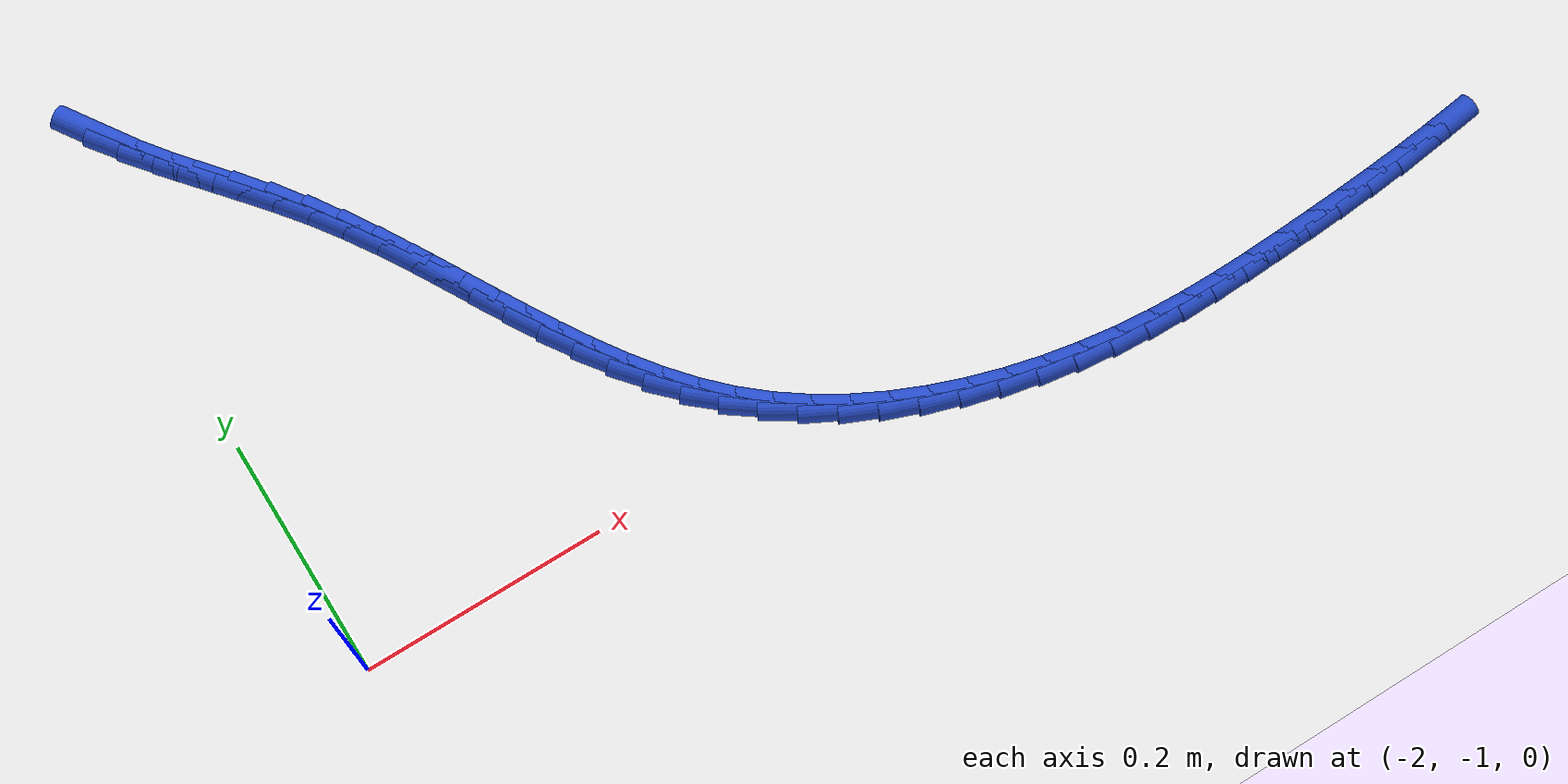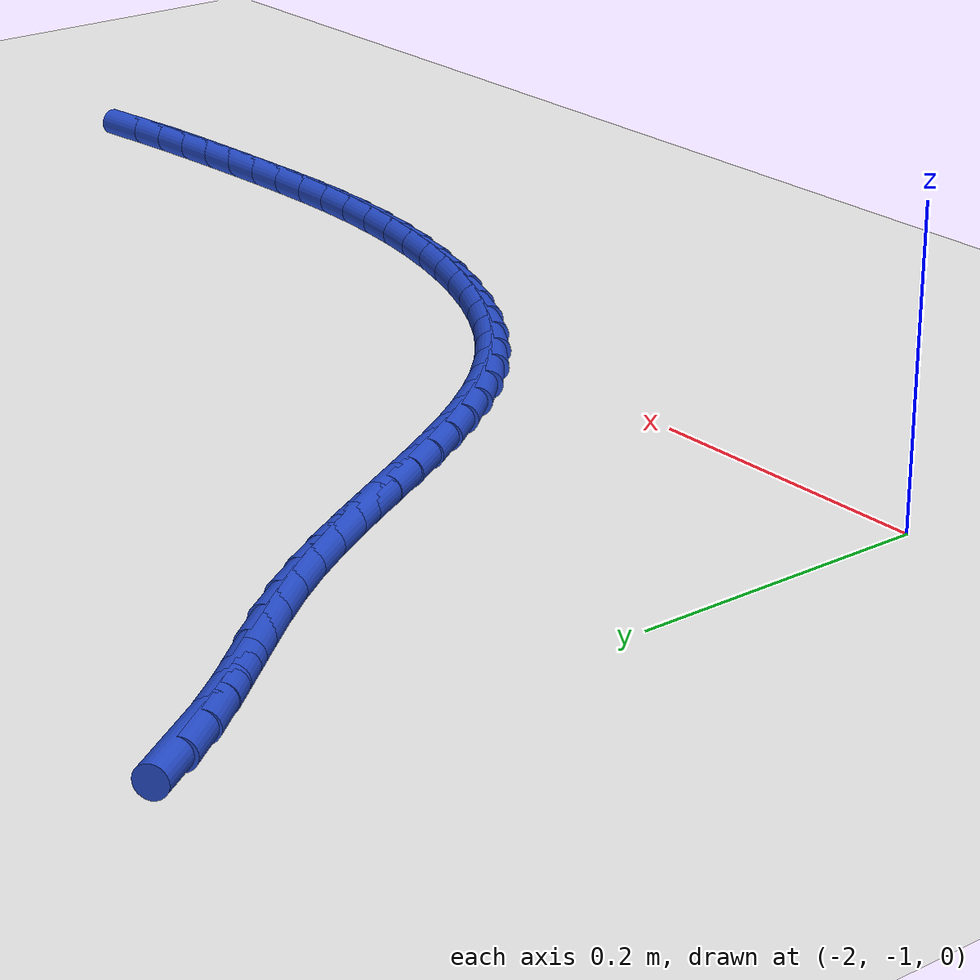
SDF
<sdf version="1.6">
 <world name="default">
  <model name="ground_plane">
   <static>1</static>
   <link name="link">
    <collision name="collision">
     <geometry><plane><normal>0 0 1</normal><size>100 100</size></plane></geometry>
     <surface><friction><ode><mu>100</mu><mu2>50</mu2></ode></friction></surface>
    </collision>
    <visual name="visual">
     <cast_shadows>0</cast_shadows>
     <geometry><plane><normal>0 0 1</normal><size>100 100</size></plane></geometry>
     <material>
      <script><uri>file://media/materials/scripts/gazebo.material</uri><name>Gazebo/WhiteGlow</name></script>
     </material>
    </visual>
   </link>
  </model>
  <model name="line">
   <link name="link_135">
    <pose>-1.9682922186451748 -0.5286627827856129 0.01 0 1.57 -0.9882500658434102</pose>
    <collision name="collision">
     <geometry><cylinder><radius>0.01</radius><length>0.08</length></cylinder></geometry>
    </collision>
    <visual name="visual">
     <material>
      <script><name>Gazebo/Blue</name><uri>file://media/materials/scripts/gazebo.material</uri></script>
     </material>
     <geometry><cylinder><radius>0.01</radius><length>0.08</length></cylinder></geometry>
    </visual>
   </link>
   <link name="link_136">
    <pose>-1.952254815870547 -0.5530056297260606 0.01 0 1.57 -0.9278503059539042</pose>
    <collision name="collision">
     <geometry><cylinder><radius>0.01</radius><length>0.08</length></cylinder></geometry>
    </collision>
    <visual name="visual">
     <material>
      <script><name>Gazebo/Blue</name><uri>file://media/materials/scripts/gazebo.material</uri></script>
     </material>
     <geometry><cylinder><radius>0.01</radius><length>0.08</length></cylinder></geometry>
    </visual>
   </link>
   <link name="link_137">
    <pose>-1.9346320990363561 -0.5765297782941868 0.01 0 1.57 -0.889891641261874</pose>
    <collision name="collision">
     <geometry><cylinder><radius>0.01</radius><length>0.08</length></cylinder></geometry>
    </collision>
    <visual name="visual">
     <material>
      <script><name>Gazebo/Blue</name><uri>file://media/materials/scripts/gazebo.material</uri></script>
     </material>
     <geometry><cylinder><radius>0.01</radius><length>0.08</length></cylinder></geometry>
    </visual>
   </link>
   <link name="link_138">
    <pose>-1.9159578700021185 -0.5995798642099166 0.01 0 1.57 -0.8751440422891126</pose>
    <collision name="collision">
     <geometry><cylinder><radius>0.01</radius><length>0.08</length></cylinder></geometry>
    </collision>
    <visual name="visual">
     <material>
      <script><name>Gazebo/Blue</name><uri>file://media/materials/scripts/gazebo.material</uri></script>
     </material>
     <geometry><cylinder><radius>0.01</radius><length>0.08</length></cylinder></geometry>
    </visual>
   </link>
   <link name="link_139">
    <pose>-1.896803812980016 -0.6225220624255292 0.01 0 1.57 -0.883005170684863</pose>
    <collision name="collision">
     <geometry><cylinder><radius>0.01</radius><length>0.08</length></cylinder></geometry>
    </collision>
    <visual name="visual">
     <material>
      <script><name>Gazebo/Blue</name><uri>file://media/materials/scripts/gazebo.material</uri></script>
     </material>
     <geometry><cylinder><radius>0.01</radius><length>0.08</length></cylinder></geometry>
    </visual>
   </link>
   <link name="link_140">
    <pose>-1.8777416121822306 -0.6457225478933045 0.01 0 1.57 -0.9132107142893447</pose>
    <collision name="collision">
     <geometry><cylinder><radius>0.01</radius><length>0.08</length></cylinder></geometry>
    </collision>
    <visual name="visual">
     <material>
      <script><name>Gazebo/Blue</name><uri>file://media/materials/scripts/gazebo.material</uri></script>
     </material>
     <geometry><cylinder><radius>0.01</radius><length>0.08</length></cylinder></geometry>
    </visual>
   </link>
   <link name="link_141">
    <pose>-1.8593429518209446 -0.6695474955655198 0.01 0 1.57 -0.9607451356174675</pose>
    <collision name="collision">
     <geometry><cylinder><radius>0.01</radius><length>0.08</length></cylinder></geometry>
    </collision>
    <visual name="visual">
     <material>
      <script><name>Gazebo/Blue</name><uri>file://media/materials/scripts/gazebo.material</uri></script>
     </material>
     <geometry><cylinder><radius>0.01</radius><length>0.08</length></cylinder></geometry>
    </visual>
   </link>
   <link name="link_142">
    <pose>-1.842057964403549 -0.6942758353583252 0.01 0 1.57 -1.0030398983418476</pose>
    <collision name="collision">
     <geometry><cylinder><radius>0.01</radius><length>0.08</length></cylinder></geometry>
    </collision>
    <visual name="visual">
     <material>
      <script><name>Gazebo/Blue</name><uri>file://media/materials/scripts/gazebo.material</uri></script>
     </material>
     <geometry><cylinder><radius>0.01</radius><length>0.08</length></cylinder></geometry>
    </visual>
   </link>
   <link name="link_143">
    <pose>-1.825784688088857 -0.7197902255644314 0.01 0 1.57 -1.0338303001252434</pose>
    <collision name="collision">
     <geometry><cylinder><radius>0.01</radius><length>0.08</length></cylinder></geometry>
    </collision>
    <visual name="visual">
     <material>
      <script><name>Gazebo/Blue</name><uri>file://media/materials/scripts/gazebo.material</uri></script>
     </material>
     <geometry><cylinder><radius>0.01</radius><length>0.08</length></cylinder></geometry>
    </visual>
   </link>
   <link name="link_144">
    <pose>-1.8102644928391411 -0.7458608742028902 0.01 0 1.57 -1.053316915765545</pose>
    <collision name="collision">
     <geometry><cylinder><radius>0.01</radius><length>0.08</length></cylinder></geometry>
    </collision>
    <visual name="visual">
     <material>
      <script><name>Gazebo/Blue</name><uri>file://media/materials/scripts/gazebo.material</uri></script>
     </material>
     <geometry><cylinder><radius>0.01</radius><length>0.08</length></cylinder></geometry>
    </visual>
   </link>
   <link name="link_145">
    <pose>-1.7952387381293633 -0.7722579817653715 0.01 0 1.57 -1.0616467038521995</pose>
    <collision name="collision">
     <geometry><cylinder><radius>0.01</radius><length>0.08</length></cylinder></geometry>
    </collision>
    <visual name="visual">
     <material>
      <script><name>Gazebo/Blue</name><uri>file://media/materials/scripts/gazebo.material</uri></script>
     </material>
     <geometry><cylinder><radius>0.01</radius><length>0.08</length></cylinder></geometry>
    </visual>
   </link>
   <link name="link_146">
    <pose>-1.780448783434487 -0.798751748743548 0.01 0 1.57 -1.0588408875680566</pose>
    <collision name="collision">
     <geometry><cylinder><radius>0.01</radius><length>0.08</length></cylinder></geometry>
    </collision>
    <visual name="visual">
     <material>
      <script><name>Gazebo/Blue</name><uri>file://media/materials/scripts/gazebo.material</uri></script>
     </material>
     <geometry><cylinder><radius>0.01</radius><length>0.08</length></cylinder></geometry>
    </visual>
   </link>
   <link name="link_147">
    <pose>-1.7656359882294725 -0.8251123756290907 0.01 0 1.57 -1.0447631361171974</pose>
    <collision name="collision">
     <geometry><cylinder><radius>0.01</radius><length>0.08</length></cylinder></geometry>
    </collision>
    <visual name="visual">
     <material>
      <script><name>Gazebo/Blue</name><uri>file://media/materials/scripts/gazebo.material</uri></script>
     </material>
     <geometry><cylinder><radius>0.01</radius><length>0.08</length></cylinder></geometry>
    </visual>
   </link>
   <link name="link_148">
    <pose>-1.750541711989283 -0.851110062913672 0.01 0 1.57 -1.0191246841638053</pose>
    <collision name="collision">
     <geometry><cylinder><radius>0.01</radius><length>0.08</length></cylinder></geometry>
    </collision>
    <visual name="visual">
     <material>
      <script><name>Gazebo/Blue</name><uri>file://media/materials/scripts/gazebo.material</uri></script>
     </material>
     <geometry><cylinder><radius>0.01</radius><length>0.08</length></cylinder></geometry>
    </visual>
   </link>
   <link name="link_149">
    <pose>-1.734907314188881 -0.8765150110889619 0.01 0 1.57 -0.98153065235274</pose>
    <collision name="collision">
     <geometry><cylinder><radius>0.01</radius><length>0.08</length></cylinder></geometry>
    </collision>
    <visual name="visual">
     <material>
      <script><name>Gazebo/Blue</name><uri>file://media/materials/scripts/gazebo.material</uri></script>
     </material>
     <geometry><cylinder><radius>0.01</radius><length>0.08</length></cylinder></geometry>
    </visual>
   </link>
   <link name="link_150">
    <pose>-1.7184741543032276 -0.9010974206466323 0.01 0 1.57 -0.9315789482530721</pose>
    <collision name="collision">
     <geometry><cylinder><radius>0.01</radius><length>0.08</length></cylinder></geometry>
    </collision>
    <visual name="visual">
     <material>
      <script><name>Gazebo/Blue</name><uri>file://media/materials/scripts/gazebo.material</uri></script>
     </material>
     <geometry><cylinder><radius>0.01</radius><length>0.08</length></cylinder></geometry>
    </visual>
   </link>
   <link name="link_151">
    <pose>-1.7009835918072866 -0.9246274920783557 0.01 0 1.57 -0.8690259919185117</pose>
    <collision name="collision">
     <geometry><cylinder><radius>0.01</radius><length>0.08</length></cylinder></geometry>
    </collision>
    <visual name="visual">
     <material>
      <script><name>Gazebo/Blue</name><uri>file://media/materials/scripts/gazebo.material</uri></script>
     </material>
     <geometry><cylinder><radius>0.01</radius><length>0.08</length></cylinder></geometry>
    </visual>
   </link>
   <link name="link_152">
    <pose>-1.6821769861760185 -0.9468754258758024 0.01 0 1.57 -0.7940246706265406</pose>
    <collision name="collision">
     <geometry><cylinder><radius>0.01</radius><length>0.08</length></cylinder></geometry>
    </collision>
    <visual name="visual">
     <material>
      <script><name>Gazebo/Blue</name><uri>file://media/materials/scripts/gazebo.material</uri></script>
     </material>
     <geometry><cylinder><radius>0.01</radius><length>0.08</length></cylinder></geometry>
    </visual>
   </link>
   <link name="link_153">
    <pose>-1.661795696884386 -0.9676114225306449 0.01 0 1.57 -0.7087738002623699</pose>
    <collision name="collision">
     <geometry><cylinder><radius>0.01</radius><length>0.08</length></cylinder></geometry>
    </collision>
    <visual name="visual">
     <material>
      <script><name>Gazebo/Blue</name><uri>file://media/materials/scripts/gazebo.material</uri></script>
     </material>
     <geometry><cylinder><radius>0.01</radius><length>0.08</length></cylinder></geometry>
    </visual>
   </link>
   <link name="link_154">
    <pose>-1.6396180601342862 -0.9866265017925889 0.01 0 1.57 -0.6250444752490758</pose>
    <collision name="collision">
     <geometry><cylinder><radius>0.01</radius><length>0.08</length></cylinder></geometry>
    </collision>
    <visual name="visual">
     <material>
      <script><name>Gazebo/Blue</name><uri>file://media/materials/scripts/gazebo.material</uri></script>
     </material>
     <geometry><cylinder><radius>0.01</radius><length>0.08</length></cylinder></geometry>
    </visual>
   </link>
   <link name="link_155">
    <pose>-1.6157129628891336 -1.0038752741825583 0.01 0 1.57 -0.5478632550753556</pose>
    <collision name="collision">
     <geometry><cylinder><radius>0.01</radius><length>0.08</length></cylinder></geometry>
    </collision>
    <visual name="visual">
     <material>
      <script><name>Gazebo/Blue</name><uri>file://media/materials/scripts/gazebo.material</uri></script>
     </material>
     <geometry><cylinder><radius>0.01</radius><length>0.08</length></cylinder></geometry>
    </visual>
   </link>
   <link name="link_156">
    <pose>-1.5902865964519592 -1.0193896576175825 0.01 0 1.57 -0.47678498423219295</pose>
    <collision name="collision">
     <geometry><cylinder><radius>0.01</radius><length>0.08</length></cylinder></geometry>
    </collision>
    <visual name="visual">
     <material>
      <script><name>Gazebo/Blue</name><uri>file://media/materials/scripts/gazebo.material</uri></script>
     </material>
     <geometry><cylinder><radius>0.01</radius><length>0.08</length></cylinder></geometry>
    </visual>
   </link>
   <link name="link_157">
    <pose>-1.56354596680538 -1.0332020287092785 0.01 0 1.57 -0.411182615389369</pose>
    <collision name="collision">
     <geometry><cylinder><radius>0.01</radius><length>0.08</length></cylinder></geometry>
    </collision>
    <visual name="visual">
     <material>
      <script><name>Gazebo/Blue</name><uri>file://media/materials/scripts/gazebo.material</uri></script>
     </material>
     <geometry><cylinder><radius>0.01</radius><length>0.08</length></cylinder></geometry>
    </visual>
   </link>
   <link name="link_158">
    <pose>-1.5356980799320148 -1.045344764069263 0.01 0 1.57 -0.3503556049422845</pose>
    <collision name="collision">
     <geometry><cylinder><radius>0.01</radius><length>0.08</length></cylinder></geometry>
    </collision>
    <visual name="visual">
     <material>
      <script><name>Gazebo/Blue</name><uri>file://media/materials/scripts/gazebo.material</uri></script>
     </material>
     <geometry><cylinder><radius>0.01</radius><length>0.08</length></cylinder></geometry>
    </visual>
   </link>
   <link name="link_159">
    <pose>-1.5069499418144805 -1.0558502403091534 0.01 0 1.57 -0.29357997416947984</pose>
    <collision name="collision">
     <geometry><cylinder><radius>0.01</radius><length>0.08</length></cylinder></geometry>
    </collision>
    <visual name="visual">
     <material>
      <script><name>Gazebo/Blue</name><uri>file://media/materials/scripts/gazebo.material</uri></script>
     </material>
     <geometry><cylinder><radius>0.01</radius><length>0.08</length></cylinder></geometry>
    </visual>
   </link>
   <link name="link_160">
    <pose>-1.4775085584353946 -1.0647508340405663 0.01 0 1.57 -0.24013551613474687</pose>
    <collision name="collision">
     <geometry><cylinder><radius>0.01</radius><length>0.08</length></cylinder></geometry>
    </collision>
    <visual name="visual">
     <material>
      <script><name>Gazebo/Blue</name><uri>file://media/materials/scripts/gazebo.material</uri></script>
     </material>
     <geometry><cylinder><radius>0.01</radius><length>0.08</length></cylinder></geometry>
    </visual>
   </link>
   <link name="link_161">
    <pose>-1.4475809357773755 -1.0720789218751192 0.01 0 1.57 -0.18931612130171563</pose>
    <collision name="collision">
     <geometry><cylinder><radius>0.01</radius><length>0.08</length></cylinder></geometry>
    </collision>
    <visual name="visual">
     <material>
      <script><name>Gazebo/Blue</name><uri>file://media/materials/scripts/gazebo.material</uri></script>
     </material>
     <geometry><cylinder><radius>0.01</radius><length>0.08</length></cylinder></geometry>
    </visual>
   </link>
   <link name="link_162">
    <pose>-1.4173740798230392 -1.0778668804244291 0.01 0 1.57 -0.14042808015942157</pose>
    <collision name="collision">
     <geometry><cylinder><radius>0.01</radius><length>0.08</length></cylinder></geometry>
    </collision>
    <visual name="visual">
     <material>
      <script><name>Gazebo/Blue</name><uri>file://media/materials/scripts/gazebo.material</uri></script>
     </material>
     <geometry><cylinder><radius>0.01</radius><length>0.08</length></cylinder></geometry>
    </visual>
   </link>
   <link name="link_163">
    <pose>-1.3870949965550055 -1.0821470863001132 0.01 0 1.57 -0.09280063081365243</pose>
    <collision name="collision">
     <geometry><cylinder><radius>0.01</radius><length>0.08</length></cylinder></geometry>
    </collision>
    <visual name="visual">
     <material>
      <script><name>Gazebo/Blue</name><uri>file://media/materials/scripts/gazebo.material</uri></script>
     </material>
     <geometry><cylinder><radius>0.01</radius><length>0.08</length></cylinder></geometry>
    </visual>
   </link>
   <link name="link_164">
    <pose>-1.356949696394557 -1.0849526475899296 0.01 0 1.57 -0.04800858393175135</pose>
    <collision name="collision">
     <geometry><cylinder><radius>0.01</radius><length>0.08</length></cylinder></geometry>
    </collision>
    <visual name="visual">
     <material>
      <script><name>Gazebo/Blue</name><uri>file://media/materials/scripts/gazebo.material</uri></script>
     </material>
     <geometry><cylinder><radius>0.01</radius><length>0.08</length></cylinder></geometry>
    </visual>
   </link>
   <link name="link_165">
    <pose>-1.3270451704940744 -1.0863894255413744 0.01 0 1.57 -0.010335887495956122</pose>
    <collision name="collision">
     <geometry><cylinder><radius>0.01</radius><length>0.08</length></cylinder></geometry>
    </collision>
    <visual name="visual">
     <material>
      <script><name>Gazebo/Blue</name><uri>file://media/materials/scripts/gazebo.material</uri></script>
     </material>
     <geometry><cylinder><radius>0.01</radius><length>0.08</length></cylinder></geometry>
    </visual>
   </link>
   <link name="link_166">
    <pose>-1.2973066731718308 -1.0866968102501018 0.01 0 1.57 0.019154096472087382</pose>
    <collision name="collision">
     <geometry><cylinder><radius>0.01</radius><length>0.08</length></cylinder></geometry>
    </collision>
    <visual name="visual">
     <material>
      <script><name>Gazebo/Blue</name><uri>file://media/materials/scripts/gazebo.material</uri></script>
     </material>
     <geometry><cylinder><radius>0.01</radius><length>0.08</length></cylinder></geometry>
    </visual>
   </link>
   <link name="link_167">
    <pose>-1.2676399820291369 -1.0861285020840585 0.01 0 1.57 0.04007070730713486</pose>
    <collision name="collision">
     <geometry><cylinder><radius>0.01</radius><length>0.08</length></cylinder></geometry>
    </collision>
    <visual name="visual">
     <material>
      <script><name>Gazebo/Blue</name><uri>file://media/materials/scripts/gazebo.material</uri></script>
     </material>
     <geometry><cylinder><radius>0.01</radius><length>0.08</length></cylinder></geometry>
    </visual>
   </link>
   <link name="link_168">
    <pose>-1.2379508746673027 -1.0849382014111923 0.01 0 1.57 0.052303478436639496</pose>
    <collision name="collision">
     <geometry><cylinder><radius>0.01</radius><length>0.08</length></cylinder></geometry>
    </collision>
    <visual name="visual">
     <material>
      <script><name>Gazebo/Blue</name><uri>file://media/materials/scripts/gazebo.material</uri></script>
     </material>
     <geometry><cylinder><radius>0.01</radius><length>0.08</length></cylinder></geometry>
    </visual>
   </link>
   <link name="link_169">
    <pose>-1.2081459099494816 -1.0833778749845397 0.01 0 1.57 0.06022696855080201</pose>
    <collision name="collision">
     <geometry><cylinder><radius>0.01</radius><length>0.08</length></cylinder></geometry>
    </collision>
    <visual name="visual">
     <material>
      <script><name>Gazebo/Blue</name><uri>file://media/materials/scripts/gazebo.material</uri></script>
     </material>
     <geometry><cylinder><radius>0.01</radius><length>0.08</length></cylinder></geometry>
    </visual>
   </link>
   <link name="link_170">
    <pose>-1.178189327545659 -1.081571496224702 0.01 0 1.57 0.07116689119383875</pose>
    <collision name="collision">
     <geometry><cylinder><radius>0.01</radius><length>0.08</length></cylinder></geometry>
    </collision>
    <visual name="visual">
     <material>
      <script><name>Gazebo/Blue</name><uri>file://media/materials/scripts/gazebo.material</uri></script>
     </material>
     <geometry><cylinder><radius>0.01</radius><length>0.08</length></cylinder></geometry>
    </visual>
   </link>
   <link name="link_171">
    <pose>-1.148141610059284 -1.0794294761135124 0.01 0 1.57 0.08584049929691459</pose>
    <collision name="collision">
     <geometry><cylinder><radius>0.01</radius><length>0.08</length></cylinder></geometry>
    </collision>
    <visual name="visual">
     <material>
      <script><name>Gazebo/Blue</name><uri>file://media/materials/scripts/gazebo.material</uri></script>
     </material>
     <geometry><cylinder><radius>0.01</radius><length>0.08</length></cylinder></geometry>
    </visual>
   </link>
   <link name="link_172">
    <pose>-1.1180723732423763 -1.0768419592359633 0.01 0 1.57 0.10430857425246702</pose>
    <collision name="collision">
     <geometry><cylinder><radius>0.01</radius><length>0.08</length></cylinder></geometry>
    </collision>
    <visual name="visual">
     <material>
      <script><name>Gazebo/Blue</name><uri>file://media/materials/scripts/gazebo.material</uri></script>
     </material>
     <geometry><cylinder><radius>0.01</radius><length>0.08</length></cylinder></geometry>
    </visual>
   </link>
   <link name="link_173">
    <pose>-1.0880512328469558 -1.073699090177047 0.01 0 1.57 0.12666405646333706</pose>
    <collision name="collision">
     <geometry><cylinder><radius>0.01</radius><length>0.08</length></cylinder></geometry>
    </collision>
    <visual name="visual">
     <material>
      <script><name>Gazebo/Blue</name><uri>file://media/materials/scripts/gazebo.material</uri></script>
     </material>
     <geometry><cylinder><radius>0.01</radius><length>0.08</length></cylinder></geometry>
    </visual>
   </link>
  </model>
 </world>
</sdf>
